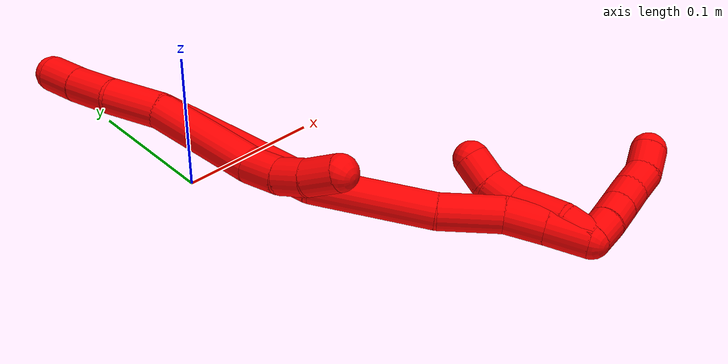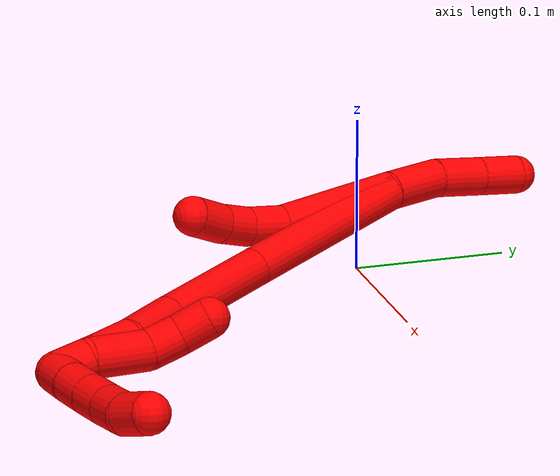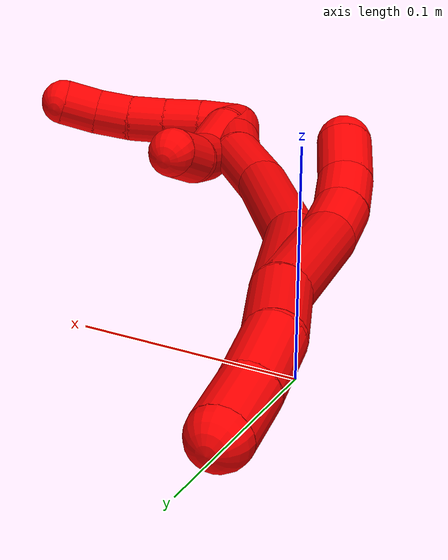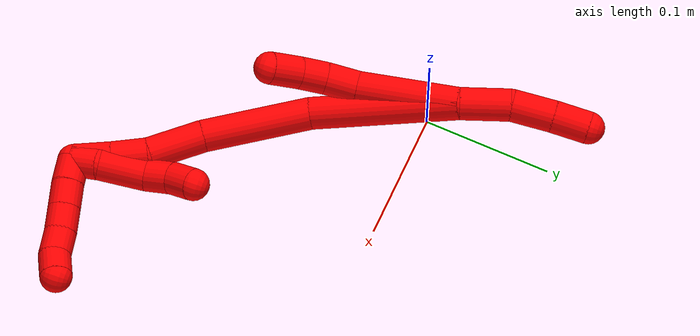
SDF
<sdf version="1.7">
 <world name="default">
  <model name="photoneo_s_sensor">
   <static>1</static>
   <pose>0 0 2 1.57079 1.57079 3.14159</pose>
   <link name="link">
    <inertial><mass>0.1</mass></inertial>
    <sensor name="sensor" type="depth">
     <update_rate>30</update_rate>
     <camera>
      <horizontal_fov>1.22</horizontal_fov>
      <image><width>1920</width><height>1200</height><format>B8G8R8</format></image>
      <clip><near>0.1</near><far>4</far></clip>
      <depth_camera><output>points</output></depth_camera>
     </camera>
     <plugin name="camera_plugin" filename="libgazebo_ros_depth_camera.so">
      <baseline>0.2</baseline>
      <alwaysOn>1</alwaysOn>
      <updateRate>0.0</updateRate>
      <cameraName>camera_ir</cameraName>
      <imageTopicName>/camera/color/image_raw</imageTopicName>
      <cameraInfoTopicName>/camera/color/camera_info</cameraInfoTopicName>
      <depthImageTopicName>/camera/depth/image_raw</depthImageTopicName>
      <depthImageCameraInfoTopicName>/camera/depth/camera_info</depthImageCameraInfoTopicName>
      <pointCloudTopicName>/camera/depth/points</pointCloudTopicName>
      <frameName>fr_optical</frameName>
      <pointCloudCutoff>0.1</pointCloudCutoff>
      <pointCloudCutoffMax>2.0</pointCloudCutoffMax>
      <distortionK1>0</distortionK1>
      <distortionK2>0</distortionK2>
      <distortionK3>0</distortionK3>
      <distortionT1>0</distortionT1>
      <distortionT2>0</distortionT2>
      <CxPrime>0</CxPrime>
      <Cx>0</Cx>
      <Cy>0</Cy>
      <focalLength>0</focalLength>
      <hackBaseline>0</hackBaseline>
     </plugin>
    </sensor>
   </link>
  </model>
  <model name="bin">
   <static>1</static>
   <link name="bottom">
    <collision name="collision-bottom">
     <pose>0 0 -0.01 0 -0 0</pose>
     <geometry><box><size>0.8 0.6 0.02</size></box></geometry>
     <surface>
      <friction><ode><mu>100</mu><mu2>100</mu2></ode></friction>
      <contact><collide_bitmask>65535</collide_bitmask></contact>
     </surface>
    </collision>
   </link>
   <link name="west_wall">
    <collision name="collision-west_wall">
     <pose>-0.41 0 0.1 0 -0 0</pose>
     <geometry><box><size>0.02 0.6 0.2</size></box></geometry>
     <surface>
      <friction><ode><mu>100</mu><mu2>100</mu2></ode></friction>
      <contact><collide_bitmask>65535</collide_bitmask></contact>
     </surface>
    </collision>
   </link>
   <link name="east_wall">
    <collision name="collision-east_wall">
     <pose>0.41 0 0.1 0 -0 0</pose>
     <geometry><box><size>0.02 0.6 0.2</size></box></geometry>
     <surface>
      <friction><ode><mu>100</mu><mu2>100</mu2></ode></friction>
      <contact><collide_bitmask>65535</collide_bitmask></contact>
     </surface>
    </collision>
   </link>
   <link name="south_wall">
    <collision name="collision-south_wall">
     <pose>0 -0.31 0.1 0 -0 0</pose>
     <geometry><box><size>0.8 0.02 0.2</size></box></geometry>
     <surface>
      <friction><ode><mu>100</mu><mu2>100</mu2></ode></friction>
      <contact><collide_bitmask>65535</collide_bitmask></contact>
     </surface>
    </collision>
   </link>
   <link name="north_wall">
    <collision name="collision-north_wall">
     <pose>0 0.31 0.1 0 -0 0</pose>
     <geometry><box><size>0.8 0.02 0.2</size></box></geometry>
     <surface>
      <friction><ode><mu>100</mu><mu2>100</mu2></ode></friction>
      <contact><collide_bitmask>65535</collide_bitmask></contact>
     </surface>
    </collision>
   </link>
  </model>
  <model name="2">
   <static>0</static>
   <link name="2">
    <collision name="collision-cylinder-e_1_2_8">
     <pose>-0.006113 -0.006188 0.038562 0.159102 -0.155264 -0.012402</pose>
     <geometry><cylinder><radius>0.0125</radius><length>0.079062</length></cylinder></geometry>
     <surface>
      <friction><ode><mu>1.16</mu><mu2>1.16</mu2><slip1>0</slip1><slip2>0</slip2></ode></friction>
      <contact><ode><kp>1e+06</kp><kd>1</kd><max_vel>0</max_vel><min_depth>0.001</min_depth></ode></contact>
     </surface>
    </collision>
    <visual name="visual-cylinder-e_1_2_8">
     <pose>-0.006113 -0.006188 0.038562 0.159102 -0.155264 -0.012402</pose>
     <geometry><cylinder><radius>0.0125</radius><length>0.079062</length></cylinder></geometry>
     <material><ambient>1 0 0 1</ambient></material>
    </visual>
    <collision name="collision-cylinder-e_2_8_9">
     <pose>-0.011414 -0.013173 0.08982 0.062759 0.063726 0.002001</pose>
     <geometry><cylinder><radius>0.0125</radius><length>0.025494</length></cylinder></geometry>
     <surface>
      <friction><ode><mu>1.16</mu><mu2>1.16</mu2><slip1>0</slip1><slip2>0</slip2></ode></friction>
      <contact><ode><kp>1e+06</kp><kd>1</kd><max_vel>0</max_vel><min_depth>0.001</min_depth></ode></contact>
     </surface>
    </collision>
    <visual name="visual-cylinder-e_2_8_9">
     <pose>-0.011414 -0.013173 0.08982 0.062759 0.063726 0.002001</pose>
     <geometry><cylinder><radius>0.0125</radius><length>0.025494</length></cylinder></geometry>
     <material><ambient>1 0 0 1</ambient></material>
    </visual>
    <collision name="collision-cylinder-e_3_9_10">
     <pose>-0.007582 -0.015451 0.112464 0.147735 0.2918 0.021747</pose>
     <geometry><cylinder><radius>0.0125</radius><length>0.021001</length></cylinder></geometry>
     <surface>
      <friction><ode><mu>1.16</mu><mu2>1.16</mu2><slip1>0</slip1><slip2>0</slip2></ode></friction>
      <contact><ode><kp>1e+06</kp><kd>1</kd><max_vel>0</max_vel><min_depth>0.001</min_depth></ode></contact>
     </surface>
    </collision>
    <visual name="visual-cylinder-e_3_9_10">
     <pose>-0.007582 -0.015451 0.112464 0.147735 0.2918 0.021747</pose>
     <geometry><cylinder><radius>0.0125</radius><length>0.021001</length></cylinder></geometry>
     <material><ambient>1 0 0 1</ambient></material>
    </visual>
    <collision name="collision-cylinder-e_4_10_6">
     <pose>0.000811 -0.019225 0.133146 0.210447 0.455151 0.048908</pose>
     <geometry><cylinder><radius>0.0125</radius><length>0.024443</length></cylinder></geometry>
     <surface>
      <friction><ode><mu>1.16</mu><mu2>1.16</mu2><slip1>0</slip1><slip2>0</slip2></ode></friction>
      <contact><ode><kp>1e+06</kp><kd>1</kd><max_vel>0</max_vel><min_depth>0.001</min_depth></ode></contact>
     </surface>
    </collision>
    <visual name="visual-cylinder-e_4_10_6">
     <pose>0.000811 -0.019225 0.133146 0.210447 0.455151 0.048908</pose>
     <geometry><cylinder><radius>0.0125</radius><length>0.024443</length></cylinder></geometry>
     <material><ambient>1 0 0 1</ambient></material>
    </visual>
    <collision name="collision-cylinder-e_1_2_11">
     <pose>-0.000434 0.005848 -0.018621 -2.83727 -0.022215 0.144623</pose>
     <geometry><cylinder><radius>0.0125</radius><length>0.039044</length></cylinder></geometry>
     <surface>
      <friction><ode><mu>1.16</mu><mu2>1.16</mu2><slip1>0</slip1><slip2>0</slip2></ode></friction>
      <contact><ode><kp>1e+06</kp><kd>1</kd><max_vel>0</max_vel><min_depth>0.001</min_depth></ode></contact>
     </surface>
    </collision>
    <visual name="visual-cylinder-e_1_2_11">
     <pose>-0.000434 0.005848 -0.018621 -2.83727 -0.022215 0.144623</pose>
     <geometry><cylinder><radius>0.0125</radius><length>0.039044</length></cylinder></geometry>
     <material><ambient>1 0 0 1</ambient></material>
    </visual>
    <collision name="collision-cylinder-e_2_11_12">
     <pose>-0.00213 0.012892 -0.053684 -3.06904 -0.076438 1.62302</pose>
     <geometry><cylinder><radius>0.0125</radius><length>0.033068</length></cylinder></geometry>
     <surface>
      <friction><ode><mu>1.16</mu><mu2>1.16</mu2><slip1>0</slip1><slip2>0</slip2></ode></friction>
      <contact><ode><kp>1e+06</kp><kd>1</kd><max_vel>0</max_vel><min_depth>0.001</min_depth></ode></contact>
     </surface>
    </collision>
    <visual name="visual-cylinder-e_2_11_12">
     <pose>-0.00213 0.012892 -0.053684 -3.06904 -0.076438 1.62302</pose>
     <geometry><cylinder><radius>0.0125</radius><length>0.033068</length></cylinder></geometry>
     <material><ambient>1 0 0 1</ambient></material>
    </visual>
    <collision name="collision-cylinder-e_3_12_5">
     <pose>-0.003821 0.014387 -0.08406 -3.12007 -0.030716 1.91937</pose>
     <geometry><cylinder><radius>0.0125</radius><length>0.027887</length></cylinder></geometry>
     <surface>
      <friction><ode><mu>1.16</mu><mu2>1.16</mu2><slip1>0</slip1><slip2>0</slip2></ode></friction>
      <contact><ode><kp>1e+06</kp><kd>1</kd><max_vel>0</max_vel><min_depth>0.001</min_depth></ode></contact>
     </surface>
    </collision>
    <visual name="visual-cylinder-e_3_12_5">
     <pose>-0.003821 0.014387 -0.08406 -3.12007 -0.030716 1.91937</pose>
     <geometry><cylinder><radius>0.0125</radius><length>0.027887</length></cylinder></geometry>
     <material><ambient>1 0 0 1</ambient></material>
    </visual>
    <collision name="collision-cylinder-e_1_2_13">
     <pose>-0.010421 -0.0211 0.052546 0.38184 -0.182003 -0.03527</pose>
     <geometry><cylinder><radius>0.0125</radius><length>0.115149</length></cylinder></geometry>
     <surface>
      <friction><ode><mu>1.16</mu><mu2>1.16</mu2><slip1>0</slip1><slip2>0</slip2></ode></friction>
      <contact><ode><kp>1e+06</kp><kd>1</kd><max_vel>0</max_vel><min_depth>0.001</min_depth></ode></contact>
     </surface>
    </collision>
    <visual name="visual-cylinder-e_1_2_13">
     <pose>-0.010421 -0.0211 0.052546 0.38184 -0.182003 -0.03527</pose>
     <geometry><cylinder><radius>0.0125</radius><length>0.115149</length></cylinder></geometry>
     <material><ambient>1 0 0 1</ambient></material>
    </visual>
    <collision name="collision-cylinder-e_2_13_14">
     <pose>-0.019844 -0.06387 0.141001 0.542968 0.023787 0.006622</pose>
     <geometry><cylinder><radius>0.0125</radius><length>0.083907</length></cylinder></geometry>
     <surface>
      <friction><ode><mu>1.16</mu><mu2>1.16</mu2><slip1>0</slip1><slip2>0</slip2></ode></friction>
      <contact><ode><kp>1e+06</kp><kd>1</kd><max_vel>0</max_vel><min_depth>0.001</min_depth></ode></contact>
     </surface>
    </collision>
    <visual name="visual-cylinder-e_2_13_14">
     <pose>-0.019844 -0.06387 0.141001 0.542968 0.023787 0.006622</pose>
     <geometry><cylinder><radius>0.0125</radius><length>0.083907</length></cylinder></geometry>
     <material><ambient>1 0 0 1</ambient></material>
    </visual>
    <collision name="collision-cylinder-e_3_14_15">
     <pose>-0.015614 -0.098782 0.19398 0.659795 0.148534 0.050942</pose>
     <geometry><cylinder><radius>0.0125</radius><length>0.043688</length></cylinder></geometry>
     <surface>
      <friction><ode><mu>1.16</mu><mu2>1.16</mu2><slip1>0</slip1><slip2>0</slip2></ode></friction>
      <contact><ode><kp>1e+06</kp><kd>1</kd><max_vel>0</max_vel><min_depth>0.001</min_depth></ode></contact>
     </surface>
    </collision>
    <visual name="visual-cylinder-e_3_14_15">
     <pose>-0.015614 -0.098782 0.19398 0.659795 0.148534 0.050942</pose>
     <geometry><cylinder><radius>0.0125</radius><length>0.043688</length></cylinder></geometry>
     <material><ambient>1 0 0 1</ambient></material>
    </visual>
    <collision name="collision-cylinder-e_4_15_16">
     <pose>-0.012521 -0.117972 0.223666 0.440521 -0.010051 -0.00225</pose>
     <geometry><cylinder><radius>0.0125</radius><length>0.027898</length></cylinder></geometry>
     <surface>
      <friction><ode><mu>1.16</mu><mu2>1.16</mu2><slip1>0</slip1><slip2>0</slip2></ode></friction>
      <contact><ode><kp>1e+06</kp><kd>1</kd><max_vel>0</max_vel><min_depth>0.001</min_depth></ode></contact>
     </surface>
    </collision>
    <visual name="visual-cylinder-e_4_15_16">
     <pose>-0.012521 -0.117972 0.223666 0.440521 -0.010051 -0.00225</pose>
     <geometry><cylinder><radius>0.0125</radius><length>0.027898</length></cylinder></geometry>
     <material><ambient>1 0 0 1</ambient></material>
    </visual>
    <collision name="collision-cylinder-e_5_16_1">
     <pose>-0.012976 -0.129585 0.24982 0.396332 -0.021444 -0.004306</pose>
     <geometry><cylinder><radius>0.0125</radius><length>0.029357</length></cylinder></geometry>
     <surface>
      <friction><ode><mu>1.16</mu><mu2>1.16</mu2><slip1>0</slip1><slip2>0</slip2></ode></friction>
      <contact><ode><kp>1e+06</kp><kd>1</kd><max_vel>0</max_vel><min_depth>0.001</min_depth></ode></contact>
     </surface>
    </collision>
    <visual name="visual-cylinder-e_5_16_1">
     <pose>-0.012976 -0.129585 0.24982 0.396332 -0.021444 -0.004306</pose>
     <geometry><cylinder><radius>0.0125</radius><length>0.029357</length></cylinder></geometry>
     <material><ambient>1 0 0 1</ambient></material>
    </visual>
    <collision name="collision-cylinder-e_1_1_17">
     <pose>-0.010595 -0.133486 0.253284 -2.96823 0.257722 -1.96012</pose>
     <geometry><cylinder><radius>0.0125</radius><length>0.021153</length></cylinder></geometry>
     <surface>
      <friction><ode><mu>1.16</mu><mu2>1.16</mu2><slip1>0</slip1><slip2>0</slip2></ode></friction>
      <contact><ode><kp>1e+06</kp><kd>1</kd><max_vel>0</max_vel><min_depth>0.001</min_depth></ode></contact>
     </surface>
    </collision>
    <visual name="visual-cylinder-e_1_1_17">
     <pose>-0.010595 -0.133486 0.253284 -2.96823 0.257722 -1.96012</pose>
     <geometry><cylinder><radius>0.0125</radius><length>0.021153</length></cylinder></geometry>
     <material><ambient>1 0 0 1</ambient></material>
    </visual>
    <collision name="collision-cylinder-e_2_17_18">
     <pose>-0.008259 -0.12979 0.224728 -3.03746 -0.019353 0.367189</pose>
     <geometry><cylinder><radius>0.0125</radius><length>0.037173</length></cylinder></geometry>
     <surface>
      <friction><ode><mu>1.16</mu><mu2>1.16</mu2><slip1>0</slip1><slip2>0</slip2></ode></friction>
      <contact><ode><kp>1e+06</kp><kd>1</kd><max_vel>0</max_vel><min_depth>0.001</min_depth></ode></contact>
     </surface>
    </collision>
    <visual name="visual-cylinder-e_2_17_18">
     <pose>-0.008259 -0.12979 0.224728 -3.03746 -0.019353 0.367189</pose>
     <geometry><cylinder><radius>0.0125</radius><length>0.037173</length></cylinder></geometry>
     <material><ambient>1 0 0 1</ambient></material>
    </visual>
    <collision name="collision-cylinder-e_3_18_19">
     <pose>-0.005404 -0.125878 0.19638 -2.94347 0.309228 -2.00629</pose>
     <geometry><cylinder><radius>0.0125</radius><length>0.021128</length></cylinder></geometry>
     <surface>
      <friction><ode><mu>1.16</mu><mu2>1.16</mu2><slip1>0</slip1><slip2>0</slip2></ode></friction>
      <contact><ode><kp>1e+06</kp><kd>1</kd><max_vel>0</max_vel><min_depth>0.001</min_depth></ode></contact>
     </surface>
    </collision>
    <visual name="visual-cylinder-e_3_18_19">
     <pose>-0.005404 -0.125878 0.19638 -2.94347 0.309228 -2.00629</pose>
     <geometry><cylinder><radius>0.0125</radius><length>0.021128</length></cylinder></geometry>
     <material><ambient>1 0 0 1</ambient></material>
    </visual>
    <collision name="collision-cylinder-e_4_19_4">
     <pose>0.003308 -0.123827 0.177836 -3.13347 0.564676 -3.11358</pose>
     <geometry><cylinder><radius>0.0125</radius><length>0.020546</length></cylinder></geometry>
     <surface>
      <friction><ode><mu>1.16</mu><mu2>1.16</mu2><slip1>0</slip1><slip2>0</slip2></ode></friction>
      <contact><ode><kp>1e+06</kp><kd>1</kd><max_vel>0</max_vel><min_depth>0.001</min_depth></ode></contact>
     </surface>
    </collision>
    <visual name="visual-cylinder-e_4_19_4">
     <pose>0.003308 -0.123827 0.177836 -3.13347 0.564676 -3.11358</pose>
     <geometry><cylinder><radius>0.0125</radius><length>0.020546</length></cylinder></geometry>
     <material><ambient>1 0 0 1</ambient></material>
    </visual>
    <collision name="collision-cylinder-e_1_1_20">
     <pose>-0.009842 -0.144554 0.262118 1.7033 0.352101 0.400893</pose>
     <geometry><cylinder><radius>0.0125</radius><length>0.02</length></cylinder></geometry>
     <surface>
      <friction><ode><mu>1.16</mu><mu2>1.16</mu2><slip1>0</slip1><slip2>0</slip2></ode></friction>
      <contact><ode><kp>1e+06</kp><kd>1</kd><max_vel>0</max_vel><min_depth>0.001</min_depth></ode></contact>
     </surface>
    </collision>
    <visual name="visual-cylinder-e_1_1_20">
     <pose>-0.009842 -0.144554 0.262118 1.7033 0.352101 0.400893</pose>
     <geometry><cylinder><radius>0.0125</radius><length>0.02</length></cylinder></geometry>
     <material><ambient>1 0 0 1</ambient></material>
    </visual>
    <collision name="collision-cylinder-e_2_20_21">
     <pose>-0.003319 -0.163132 0.258746 1.79675 0.312472 0.390631</pose>
     <geometry><cylinder><radius>0.0125</radius><length>0.02</length></cylinder></geometry>
     <surface>
      <friction><ode><mu>1.16</mu><mu2>1.16</mu2><slip1>0</slip1><slip2>0</slip2></ode></friction>
      <contact><ode><kp>1e+06</kp><kd>1</kd><max_vel>0</max_vel><min_depth>0.001</min_depth></ode></contact>
     </surface>
    </collision>
    <visual name="visual-cylinder-e_2_20_21">
     <pose>-0.003319 -0.163132 0.258746 1.79675 0.312472 0.390631</pose>
     <geometry><cylinder><radius>0.0125</radius><length>0.02</length></cylinder></geometry>
     <material><ambient>1 0 0 1</ambient></material>
    </visual>
    <collision name="collision-cylinder-e_3_21_22">
     <pose>0.003129 -0.181586 0.254532 1.79385 0.344166 0.428598</pose>
     <geometry><cylinder><radius>0.0125</radius><length>0.02</length></cylinder></geometry>
     <surface>
      <friction><ode><mu>1.16</mu><mu2>1.16</mu2><slip1>0</slip1><slip2>0</slip2></ode></friction>
      <contact><ode><kp>1e+06</kp><kd>1</kd><max_vel>0</max_vel><min_depth>0.001</min_depth></ode></contact>
     </surface>
    </collision>
    <visual name="visual-cylinder-e_3_21_22">
     <pose>0.003129 -0.181586 0.254532 1.79385 0.344166 0.428598</pose>
     <geometry><cylinder><radius>0.0125</radius><length>0.02</length></cylinder></geometry>
     <material><ambient>1 0 0 1</ambient></material>
    </visual>
    <collision name="collision-cylinder-e_4_22_23">
     <pose>0.010707 -0.199748 0.251161 1.7133 0.433879 0.49802</pose>
     <geometry><cylinder><radius>0.0125</radius><length>0.02</length></cylinder></geometry>
     <surface>
      <friction><ode><mu>1.16</mu><mu2>1.16</mu2><slip1>0</slip1><slip2>0</slip2></ode></friction>
      <contact><ode><kp>1e+06</kp><kd>1</kd><max_vel>0</max_vel><min_depth>0.001</min_depth></ode></contact>
     </surface>
    </collision>
    <visual name="visual-cylinder-e_4_22_23">
     <pose>0.010707 -0.199748 0.251161 1.7133 0.433879 0.49802</pose>
     <geometry><cylinder><radius>0.0125</radius><length>0.02</length></cylinder></geometry>
     <material><ambient>1 0 0 1</ambient></material>
    </visual>
    <collision name="collision-cylinder-e_5_23_3">
     <pose>0.02078 -0.215922 0.246153 2.04806 0.627183 0.979076</pose>
     <geometry><cylinder><radius>0.0125</radius><length>0.02</length></cylinder></geometry>
     <surface>
      <friction><ode><mu>1.16</mu><mu2>1.16</mu2><slip1>0</slip1><slip2>0</slip2></ode></friction>
      <contact><ode><kp>1e+06</kp><kd>1</kd><max_vel>0</max_vel><min_depth>0.001</min_depth></ode></contact>
     </surface>
    </collision>
    <visual name="visual-cylinder-e_5_23_3">
     <pose>0.02078 -0.215922 0.246153 2.04806 0.627183 0.979076</pose>
     <geometry><cylinder><radius>0.0125</radius><length>0.02</length></cylinder></geometry>
     <material><ambient>1 0 0 1</ambient></material>
    </visual>
    <collision name="collision-sphere-3">
     <pose>0.026648 -0.223114 0.242434 0 -0 0</pose>
     <geometry><sphere><radius>0.0125</radius></sphere></geometry>
     <surface>
      <friction><ode><mu>1.16</mu><mu2>1.16</mu2><slip1>0</slip1><slip2>0</slip2></ode></friction>
      <contact><ode><kp>1e+06</kp><kd>1</kd><max_vel>0</max_vel><min_depth>0.001</min_depth></ode></contact>
     </surface>
    </collision>
    <visual name="visual-sphere-3">
     <pose>0.026648 -0.223114 0.242434 0 -0 0</pose>
     <geometry><sphere><radius>0.0125</radius></sphere></geometry>
     <material><ambient>1 0 0 1</ambient></material>
    </visual>
    <collision name="collision-sphere-23">
     <pose>0.014911 -0.20873 0.249872 0 -0 0</pose>
     <geometry><sphere><radius>0.0125</radius></sphere></geometry>
     <surface>
      <friction><ode><mu>1.16</mu><mu2>1.16</mu2><slip1>0</slip1><slip2>0</slip2></ode></friction>
      <contact><ode><kp>1e+06</kp><kd>1</kd><max_vel>0</max_vel><min_depth>0.001</min_depth></ode></contact>
     </surface>
    </collision>
    <visual name="visual-sphere-23">
     <pose>0.014911 -0.20873 0.249872 0 -0 0</pose>
     <geometry><sphere><radius>0.0125</radius></sphere></geometry>
     <material><ambient>1 0 0 1</ambient></material>
    </visual>
    <collision name="collision-sphere-22">
     <pose>0.006503 -0.190767 0.25245 0 -0 0</pose>
     <geometry><sphere><radius>0.0125</radius></sphere></geometry>
     <surface>
      <friction><ode><mu>1.16</mu><mu2>1.16</mu2><slip1>0</slip1><slip2>0</slip2></ode></friction>
      <contact><ode><kp>1e+06</kp><kd>1</kd><max_vel>0</max_vel><min_depth>0.001</min_depth></ode></contact>
     </surface>
    </collision>
    <visual name="visual-sphere-22">
     <pose>0.006503 -0.190767 0.25245 0 -0 0</pose>
     <geometry><sphere><radius>0.0125</radius></sphere></geometry>
     <material><ambient>1 0 0 1</ambient></material>
    </visual>
    <collision name="collision-sphere-21">
     <pose>-0.000245 -0.172406 0.256614 0 -0 0</pose>
     <geometry><sphere><radius>0.0125</radius></sphere></geometry>
     <surface>
      <friction><ode><mu>1.16</mu><mu2>1.16</mu2><slip1>0</slip1><slip2>0</slip2></ode></friction>
      <contact><ode><kp>1e+06</kp><kd>1</kd><max_vel>0</max_vel><min_depth>0.001</min_depth></ode></contact>
     </surface>
    </collision>
    <visual name="visual-sphere-21">
     <pose>-0.000245 -0.172406 0.256614 0 -0 0</pose>
     <geometry><sphere><radius>0.0125</radius></sphere></geometry>
     <material><ambient>1 0 0 1</ambient></material>
    </visual>
    <collision name="collision-sphere-20">
     <pose>-0.006393 -0.153858 0.260878 0 -0 0</pose>
     <geometry><sphere><radius>0.0125</radius></sphere></geometry>
     <surface>
      <friction><ode><mu>1.16</mu><mu2>1.16</mu2><slip1>0</slip1><slip2>0</slip2></ode></friction>
      <contact><ode><kp>1e+06</kp><kd>1</kd><max_vel>0</max_vel><min_depth>0.001</min_depth></ode></contact>
     </surface>
    </collision>
    <visual name="visual-sphere-20">
     <pose>-0.006393 -0.153858 0.260878 0 -0 0</pose>
     <geometry><sphere><radius>0.0125</radius></sphere></geometry>
     <material><ambient>1 0 0 1</ambient></material>
    </visual>
    <collision name="collision-sphere-4">
     <pose>0.008806 -0.123756 0.169158 0 -0 0</pose>
     <geometry><sphere><radius>0.0125</radius></sphere></geometry>
     <surface>
      <friction><ode><mu>1.16</mu><mu2>1.16</mu2><slip1>0</slip1><slip2>0</slip2></ode></friction>
      <contact><ode><kp>1e+06</kp><kd>1</kd><max_vel>0</max_vel><min_depth>0.001</min_depth></ode></contact>
     </surface>
    </collision>
    <visual name="visual-sphere-4">
     <pose>0.008806 -0.123756 0.169158 0 -0 0</pose>
     <geometry><sphere><radius>0.0125</radius></sphere></geometry>
     <material><ambient>1 0 0 1</ambient></material>
    </visual>
    <collision name="collision-sphere-11">
     <pose>-0.000867 0.011697 -0.037241 0 -0 0</pose>
     <geometry><sphere><radius>0.0125</radius></sphere></geometry>
     <surface>
      <friction><ode><mu>1.16</mu><mu2>1.16</mu2><slip1>0</slip1><slip2>0</slip2></ode></friction>
      <contact><ode><kp>1e+06</kp><kd>1</kd><max_vel>0</max_vel><min_depth>0.001</min_depth></ode></contact>
     </surface>
    </collision>
    <visual name="visual-sphere-11">
     <pose>-0.000867 0.011697 -0.037241 0 -0 0</pose>
     <geometry><sphere><radius>0.0125</radius></sphere></geometry>
     <material><ambient>1 0 0 1</ambient></material>
    </visual>
    <collision name="collision-sphere-6">
     <pose>0.006184 -0.021518 0.143881 0 -0 0</pose>
     <geometry><sphere><radius>0.0125</radius></sphere></geometry>
     <surface>
      <friction><ode><mu>1.16</mu><mu2>1.16</mu2><slip1>0</slip1><slip2>0</slip2></ode></friction>
      <contact><ode><kp>1e+06</kp><kd>1</kd><max_vel>0</max_vel><min_depth>0.001</min_depth></ode></contact>
     </surface>
    </collision>
    <visual name="visual-sphere-6">
     <pose>0.006184 -0.021518 0.143881 0 -0 0</pose>
     <geometry><sphere><radius>0.0125</radius></sphere></geometry>
     <material><ambient>1 0 0 1</ambient></material>
    </visual>
    <collision name="collision-sphere-10">
     <pose>-0.004561 -0.016932 0.122411 0 -0 0</pose>
     <geometry><sphere><radius>0.0125</radius></sphere></geometry>
     <surface>
      <friction><ode><mu>1.16</mu><mu2>1.16</mu2><slip1>0</slip1><slip2>0</slip2></ode></friction>
      <contact><ode><kp>1e+06</kp><kd>1</kd><max_vel>0</max_vel><min_depth>0.001</min_depth></ode></contact>
     </surface>
    </collision>
    <visual name="visual-sphere-10">
     <pose>-0.004561 -0.016932 0.122411 0 -0 0</pose>
     <geometry><sphere><radius>0.0125</radius></sphere></geometry>
     <material><ambient>1 0 0 1</ambient></material>
    </visual>
    <collision name="collision-sphere-9">
     <pose>-0.010603 -0.013971 0.102517 0 -0 0</pose>
     <geometry><sphere><radius>0.0125</radius></sphere></geometry>
     <surface>
      <friction><ode><mu>1.16</mu><mu2>1.16</mu2><slip1>0</slip1><slip2>0</slip2></ode></friction>
      <contact><ode><kp>1e+06</kp><kd>1</kd><max_vel>0</max_vel><min_depth>0.001</min_depth></ode></contact>
     </surface>
    </collision>
    <visual name="visual-sphere-9">
     <pose>-0.010603 -0.013971 0.102517 0 -0 0</pose>
     <geometry><sphere><radius>0.0125</radius></sphere></geometry>
     <material><ambient>1 0 0 1</ambient></material>
    </visual>
    <collision name="collision-sphere-2">
     <geometry><sphere><radius>0.0125</radius></sphere></geometry>
     <surface>
      <friction><ode><mu>1.16</mu><mu2>1.16</mu2><slip1>0</slip1><slip2>0</slip2></ode></friction>
      <contact><ode><kp>1e+06</kp><kd>1</kd><max_vel>0</max_vel><min_depth>0.001</min_depth></ode></contact>
     </surface>
    </collision>
    <visual name="visual-sphere-2">
     <geometry><sphere><radius>0.0125</radius></sphere></geometry>
     <material><ambient>1 0 0 1</ambient></material>
    </visual>
    <collision name="collision-sphere-19">
     <pose>-0.002189 -0.123897 0.186514 0 -0 0</pose>
     <geometry><sphere><radius>0.0125</radius></sphere></geometry>
     <surface>
      <friction><ode><mu>1.16</mu><mu2>1.16</mu2><slip1>0</slip1><slip2>0</slip2></ode></friction>
      <contact><ode><kp>1e+06</kp><kd>1</kd><max_vel>0</max_vel><min_depth>0.001</min_depth></ode></contact>
     </surface>
    </collision>
    <visual name="visual-sphere-19">
     <pose>-0.002189 -0.123897 0.186514 0 -0 0</pose>
     <geometry><sphere><radius>0.0125</radius></sphere></geometry>
     <material><ambient>1 0 0 1</ambient></material>
    </visual>
    <collision name="collision-sphere-8">
     <pose>-0.012226 -0.012375 0.077124 0 -0 0</pose>
     <geometry><sphere><radius>0.0125</radius></sphere></geometry>
     <surface>
      <friction><ode><mu>1.16</mu><mu2>1.16</mu2><slip1>0</slip1><slip2>0</slip2></ode></friction>
      <contact><ode><kp>1e+06</kp><kd>1</kd><max_vel>0</max_vel><min_depth>0.001</min_depth></ode></contact>
     </surface>
    </collision>
    <visual name="visual-sphere-8">
     <pose>-0.012226 -0.012375 0.077124 0 -0 0</pose>
     <geometry><sphere><radius>0.0125</radius></sphere></geometry>
     <material><ambient>1 0 0 1</ambient></material>
    </visual>
    <collision name="collision-sphere-12">
     <pose>-0.003393 0.014087 -0.070126 0 -0 0</pose>
     <geometry><sphere><radius>0.0125</radius></sphere></geometry>
     <surface>
      <friction><ode><mu>1.16</mu><mu2>1.16</mu2><slip1>0</slip1><slip2>0</slip2></ode></friction>
      <contact><ode><kp>1e+06</kp><kd>1</kd><max_vel>0</max_vel><min_depth>0.001</min_depth></ode></contact>
     </surface>
    </collision>
    <visual name="visual-sphere-12">
     <pose>-0.003393 0.014087 -0.070126 0 -0 0</pose>
     <geometry><sphere><radius>0.0125</radius></sphere></geometry>
     <material><ambient>1 0 0 1</ambient></material>
    </visual>
    <collision name="collision-sphere-5">
     <pose>-0.004249 0.014687 -0.097994 0 -0 0</pose>
     <geometry><sphere><radius>0.0125</radius></sphere></geometry>
     <surface>
      <friction><ode><mu>1.16</mu><mu2>1.16</mu2><slip1>0</slip1><slip2>0</slip2></ode></friction>
      <contact><ode><kp>1e+06</kp><kd>1</kd><max_vel>0</max_vel><min_depth>0.001</min_depth></ode></contact>
     </surface>
    </collision>
    <visual name="visual-sphere-5">
     <pose>-0.004249 0.014687 -0.097994 0 -0 0</pose>
     <geometry><sphere><radius>0.0125</radius></sphere></geometry>
     <material><ambient>1 0 0 1</ambient></material>
    </visual>
    <collision name="collision-sphere-13">
     <pose>-0.020842 -0.042199 0.105091 0 -0 0</pose>
     <geometry><sphere><radius>0.0125</radius></sphere></geometry>
     <surface>
      <friction><ode><mu>1.16</mu><mu2>1.16</mu2><slip1>0</slip1><slip2>0</slip2></ode></friction>
      <contact><ode><kp>1e+06</kp><kd>1</kd><max_vel>0</max_vel><min_depth>0.001</min_depth></ode></contact>
     </surface>
    </collision>
    <visual name="visual-sphere-13">
     <pose>-0.020842 -0.042199 0.105091 0 -0 0</pose>
     <geometry><sphere><radius>0.0125</radius></sphere></geometry>
     <material><ambient>1 0 0 1</ambient></material>
    </visual>
    <collision name="collision-sphere-14">
     <pose>-0.018846 -0.08554 0.176911 0 -0 0</pose>
     <geometry><sphere><radius>0.0125</radius></sphere></geometry>
     <surface>
      <friction><ode><mu>1.16</mu><mu2>1.16</mu2><slip1>0</slip1><slip2>0</slip2></ode></friction>
      <contact><ode><kp>1e+06</kp><kd>1</kd><max_vel>0</max_vel><min_depth>0.001</min_depth></ode></contact>
     </surface>
    </collision>
    <visual name="visual-sphere-14">
     <pose>-0.018846 -0.08554 0.176911 0 -0 0</pose>
     <geometry><sphere><radius>0.0125</radius></sphere></geometry>
     <material><ambient>1 0 0 1</ambient></material>
    </visual>
    <collision name="collision-sphere-15">
     <pose>-0.012381 -0.112024 0.211049 0 -0 0</pose>
     <geometry><sphere><radius>0.0125</radius></sphere></geometry>
     <surface>
      <friction><ode><mu>1.16</mu><mu2>1.16</mu2><slip1>0</slip1><slip2>0</slip2></ode></friction>
      <contact><ode><kp>1e+06</kp><kd>1</kd><max_vel>0</max_vel><min_depth>0.001</min_depth></ode></contact>
     </surface>
    </collision>
    <visual name="visual-sphere-15">
     <pose>-0.012381 -0.112024 0.211049 0 -0 0</pose>
     <geometry><sphere><radius>0.0125</radius></sphere></geometry>
     <material><ambient>1 0 0 1</ambient></material>
    </visual>
    <collision name="collision-sphere-16">
     <pose>-0.012661 -0.123919 0.236283 0 -0 0</pose>
     <geometry><sphere><radius>0.0125</radius></sphere></geometry>
     <surface>
      <friction><ode><mu>1.16</mu><mu2>1.16</mu2><slip1>0</slip1><slip2>0</slip2></ode></friction>
      <contact><ode><kp>1e+06</kp><kd>1</kd><max_vel>0</max_vel><min_depth>0.001</min_depth></ode></contact>
     </surface>
    </collision>
    <visual name="visual-sphere-16">
     <pose>-0.012661 -0.123919 0.236283 0 -0 0</pose>
     <geometry><sphere><radius>0.0125</radius></sphere></geometry>
     <material><ambient>1 0 0 1</ambient></material>
    </visual>
    <collision name="collision-sphere-1">
     <pose>-0.013291 -0.13525 0.263358 0 -0 0</pose>
     <geometry><sphere><radius>0.0125</radius></sphere></geometry>
     <surface>
      <friction><ode><mu>1.16</mu><mu2>1.16</mu2><slip1>0</slip1><slip2>0</slip2></ode></friction>
      <contact><ode><kp>1e+06</kp><kd>1</kd><max_vel>0</max_vel><min_depth>0.001</min_depth></ode></contact>
     </surface>
    </collision>
    <visual name="visual-sphere-1">
     <pose>-0.013291 -0.13525 0.263358 0 -0 0</pose>
     <geometry><sphere><radius>0.0125</radius></sphere></geometry>
     <material><ambient>1 0 0 1</ambient></material>
    </visual>
    <collision name="collision-sphere-18">
     <pose>-0.008619 -0.127858 0.206246 0 -0 0</pose>
     <geometry><sphere><radius>0.0125</radius></sphere></geometry>
     <surface>
      <friction><ode><mu>1.16</mu><mu2>1.16</mu2><slip1>0</slip1><slip2>0</slip2></ode></friction>
      <contact><ode><kp>1e+06</kp><kd>1</kd><max_vel>0</max_vel><min_depth>0.001</min_depth></ode></contact>
     </surface>
    </collision>
    <visual name="visual-sphere-18">
     <pose>-0.008619 -0.127858 0.206246 0 -0 0</pose>
     <geometry><sphere><radius>0.0125</radius></sphere></geometry>
     <material><ambient>1 0 0 1</ambient></material>
    </visual>
    <collision name="collision-sphere-17">
     <pose>-0.0079 -0.131722 0.243211 0 -0 0</pose>
     <geometry><sphere><radius>0.0125</radius></sphere></geometry>
     <surface>
      <friction><ode><mu>1.16</mu><mu2>1.16</mu2><slip1>0</slip1><slip2>0</slip2></ode></friction>
      <contact><ode><kp>1e+06</kp><kd>1</kd><max_vel>0</max_vel><min_depth>0.001</min_depth></ode></contact>
     </surface>
    </collision>
    <visual name="visual-sphere-17">
     <pose>-0.0079 -0.131722 0.243211 0 -0 0</pose>
     <geometry><sphere><radius>0.0125</radius></sphere></geometry>
     <material><ambient>1 0 0 1</ambient></material>
    </visual>
    <inertial>
     <pose>-0.007378 -0.067619 0.12401 0 -0 0</pose>
     <mass>0.75</mass>
     <inertia>
      <ixx>0.00027</ixx>
      <ixy>0</ixy>
      <ixz>0</ixz>
      <iyy>0.000212</iyy>
      <iyz>0</iyz>
      <izz>0.000132</izz>
     </inertia>
    </inertial>
   </link>
   <pose>-0.003766 0.023862 0.049329 1.35057 -1.23865 0.305754</pose>
  </model>
 </world>
</sdf>
